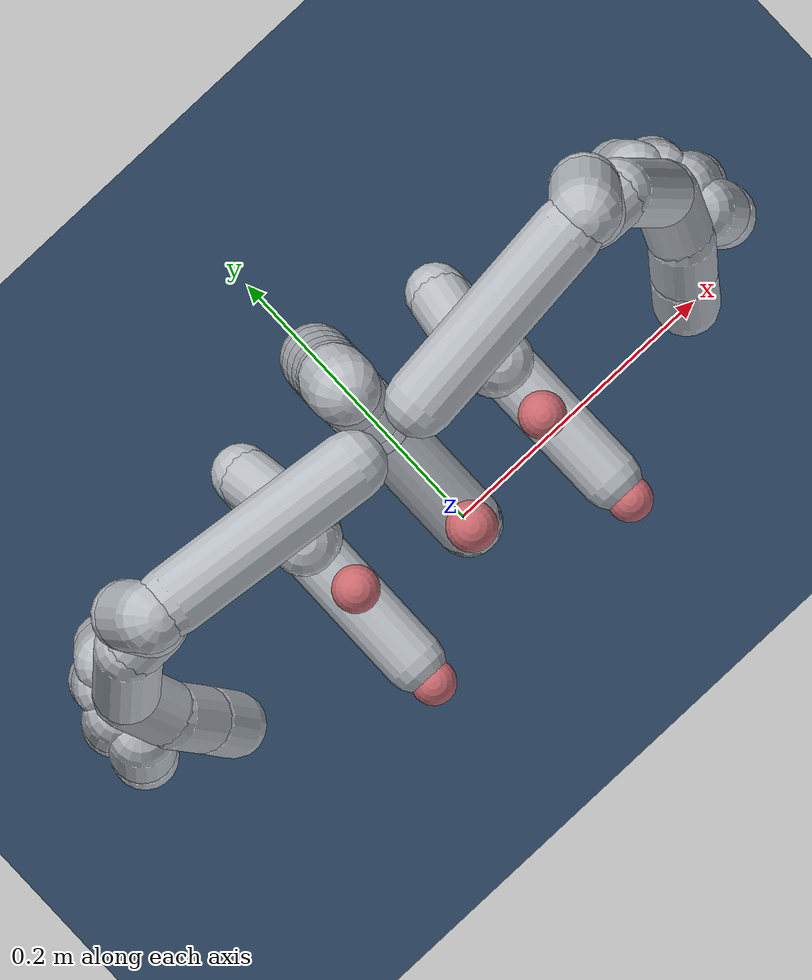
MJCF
<?xml version="1.0" ?>
<mujoco>
  <compiler angle="radian" autolimits="true"/>
  <option gravity="0 0 -9.81" timestep="0.01"/>
  <visual>
    <headlight diffuse="0.6 0.6 0.6" ambient="0.3 0.3 0.3" specular="0 0 0"/>
  </visual>
  <asset>
    <texture name="grid" type="2d" builtin="checker" width="512" height="512" rgb1="0.1 0.2 0.3" rgb2="0.2 0.3 0.4"/>
    <material name="grid" texture="grid" texrepeat="1 1" texuniform="true" reflectance="0.2"/>
  </asset>
  <worldbody>
    <geom name="floor" type="plane" size="10 10 0.1" material="grid" pos="0 0 0"/>
    <light name="spotlight" directional="true" diffuse="0.8 0.8 0.8" specular="0.2 0.2 0.2" pos="0 -2 4" dir="0 1 -1"/>
    <body name="Myo_Skeleton_body">
      <geom type="capsule" size="0.02" fromto="0 0 0 0.0 -0.0 0.855" rgba="0.9 0.9 0.9 0.8"/>
      <joint name="Myo_Skeleton" type="free"/>
      <body name="myoskeleton_root_body" pos="0.0 -0.0 0.95">
        <geom type="sphere" size="0.02" rgba="0.8 0.8 0.8 0.8"/>
        <joint name="myoskeleton_root" type="ball"/>
        <body name="pelvis_body" pos="0.0 -0.0 0.001">
          <geom type="capsule" size="0.02" fromto="0 0 0 0.0 0.07919999999999999 0.0486" rgba="0.9 0.9 0.9 0.8"/>
          <joint name="pelvis" type="ball"/>
          <body name="lumbar_spine_5_body" pos="0.0 0.088 0.054">
            <geom type="capsule" size="0.02" fromto="0 0 0 0.0 -0.0081 0.02889" rgba="0.9 0.9 0.9 0.8"/>
            <joint name="lumbar_spine_5" type="ball"/>
            <body name="lumbar_spine_4_body" pos="0.0 -0.009 0.0321">
              <geom type="capsule" size="0.02" fromto="0 0 0 0.0 -0.00054 0.02988" rgba="0.9 0.9 0.9 0.8"/>
              <joint name="lumbar_spine_4" type="ball"/>
              <body name="lumbar_spine_3_body" pos="0.0 -0.0006 0.0332">
                <geom type="capsule" size="0.02" fromto="0 0 0 0.0 0.006030000000000001 0.03159" rgba="0.9 0.9 0.9 0.8"/>
                <joint name="lumbar_spine_3" type="ball"/>
                <body name="lumbar_spine_2_body" pos="0.0 0.0067 0.0351">
                  <geom type="capsule" size="0.02" fromto="0 0 0 0.0 0.01026 0.02592" rgba="0.9 0.9 0.9 0.8"/>
                  <joint name="lumbar_spine_2" type="ball"/>
                  <body name="lumbar_spine_1_body" pos="0.0 0.0114 0.0288">
                    <geom type="capsule" size="0.02" fromto="0 0 0 0.0 0.027 0.029789999999999997" rgba="0.9 0.9 0.9 0.8"/>
                    <joint name="lumbar_spine_1" type="ball"/>
                    <body name="thoracic_spine_body" pos="0.0 0.03 0.0331">
                      <geom type="capsule" size="0.02" fromto="0 0 0 0.0 -0.004644 0.2583" rgba="0.9 0.9 0.9 0.8"/>
                      <joint name="thoracic_spine" type="ball"/>
                      <body name="cervical_spine_7_body" pos="0.0 -0.00516 0.287">
                        <geom type="capsule" size="0.02" fromto="0 0 0 0.0 -0.0034533000000000003 0.014805" rgba="0.9 0.9 0.9 0.8"/>
                        <joint name="cervical_spine_7" type="ball"/>
                        <body name="cervical_spine_6_body" pos="0.0 -0.003837 0.01645">
                          <geom type="capsule" size="0.02" fromto="0 0 0 0.0 -0.0037619999999999997 0.01611" rgba="0.9 0.9 0.9 0.8"/>
                          <joint name="cervical_spine_6" type="ball"/>
                          <body name="cervical_spine_5_body" pos="0.0 -0.00418 0.0179">
                            <geom type="capsule" size="0.02" fromto="0 0 0 0.0 -0.003069 0.017253" rgba="0.9 0.9 0.9 0.8"/>
                            <joint name="cervical_spine_5" type="ball"/>
                            <body name="cervical_spine_4_body" pos="0.0 -0.00341 0.01917">
                              <geom type="capsule" size="0.02" fromto="0 0 0 0.0 -0.002349 0.01386" rgba="0.9 0.9 0.9 0.8"/>
                              <joint name="cervical_spine_4" type="ball"/>
                              <body name="cervical_spine_3_body" pos="0.0 -0.00261 0.0154">
                                <geom type="capsule" size="0.02" fromto="0 0 0 0.0 0.000162 0.014660999999999999" rgba="0.9 0.9 0.9 0.8"/>
                                <joint name="cervical_spine_3" type="ball"/>
                                <body name="cervical_spine_2_body" pos="0.0 0.00018 0.01629">
                                  <geom type="capsule" size="0.02" fromto="0 0 0 0.0 -0.0 0.015984" rgba="0.9 0.9 0.9 0.8"/>
                                  <joint name="cervical_spine_2" type="ball"/>
                                  <body name="cervical_spine_1_body" pos="0.0 -0.0 0.01776">
                                    <geom type="capsule" size="0.02" fromto="0 0 0 0.0 -0.007011 0.013427999999999999" rgba="0.9 0.9 0.9 0.8"/>
                                    <joint name="cervical_spine_1" type="ball"/>
                                    <body name="skull_body" pos="0.0 -0.00779 0.01492">
                                      <geom type="sphere" size="0.015" rgba="1 0.5 0.5 0.8"/>
                                      <joint name="skull" type="ball"/>
                                    </body>
                                  </body>
                                </body>
                              </body>
                            </body>
                          </body>
                        </body>
                      </body>
                      <body name="clavicle_r_body" pos="0.025465 -0.058335 0.25693">
                        <geom type="capsule" size="0.02" fromto="0 0 0 0.12197700000000002 0.012897 0.018063000000000003" rgba="0.9 0.9 0.9 0.8"/>
                        <joint name="clavicle_r" type="ball"/>
                        <body name="scapula_r_body" pos="0.13553 0.01433 0.02007">
                          <geom type="capsule" size="0.02" fromto="0 0 0 0.0081 0.008595 -0.030600000000000002" rgba="0.9 0.9 0.9 0.8"/>
                          <joint name="scapula_r" type="ball"/>
                          <body name="humerus_r_body" pos="0.009 0.00955 -0.034">
                            <geom type="capsule" size="0.02" fromto="0 0 0 -0.0020700000000000002 -0.01089 -0.25686" rgba="0.9 0.9 0.9 0.8"/>
                            <joint name="humerus_r" type="ball"/>
                            <body name="ulna_r_body" pos="-0.0023 -0.0121 -0.2854">
                              <geom type="capsule" size="0.02" fromto="0 0 0 0.0179991 -0.00036 -0.0103527" rgba="0.9 0.9 0.9 0.8"/>
                              <joint name="ulna_r" type="ball"/>
                              <body name="radius_r_body" pos="0.019999 -0.0004 -0.011503">
                                <geom type="capsule" size="0.02" fromto="0 0 0 0.022500000000000003 -0.0162 -0.2178" rgba="0.9 0.9 0.9 0.8"/>
                                <joint name="radius_r" type="ball"/>
                                <body name="lunate_r_body" pos="0.025 -0.018 -0.242">
                                  <geom type="capsule" size="0.02" fromto="0 0 0 -0.009432900000000001 -0.023836500000000004 -0.0225207" rgba="0.9 0.9 0.9 0.8"/>
                                  <joint name="lunate_r" type="ball"/>
                                  <body name="metacarpal_1_r_body" pos="-0.010481 -0.026485 -0.025023">
                                    <geom type="capsule" size="0.02" fromto="0 0 0 -0.01143 -0.01485 -0.02628" rgba="0.9 0.9 0.9 0.8"/>
                                    <joint name="metacarpal_1_r" type="ball"/>
                                    <body name="proximal_phalanx_1_r_body" pos="-0.0127 -0.0165 -0.0292">
                                      <geom type="capsule" size="0.02" fromto="0 0 0 -0.009089999999999999 -0.0126 -0.02331" rgba="0.9 0.9 0.9 0.8"/>
                                      <joint name="proximal_phalanx_1_r" type="ball"/>
                                      <body name="distal_phalanx_1_r_body" pos="-0.0101 -0.014 -0.0259">
                                        <geom type="sphere" size="0.015" rgba="1 0.5 0.5 0.8"/>
                                        <joint name="distal_phalanx_1_r" type="ball"/>
                                      </body>
                                    </body>
                                  </body>
                                  <body name="proximal_phalanx_2_r_body" pos="0.010979 -0.022178 -0.080917">
                                    <geom type="capsule" size="0.02" fromto="0 0 0 0.0065934 -0.006759 -0.0371457" rgba="0.9 0.9 0.9 0.8"/>
                                    <joint name="proximal_phalanx_2_r" type="ball"/>
                                    <body name="intermediate_phalanx_2_r_body" pos="0.007326 -0.00751 -0.041273">
                                      <geom type="capsule" size="0.02" fromto="0 0 0 0.001098 -0.0029997 -0.0223992" rgba="0.9 0.9 0.9 0.8"/>
                                      <joint name="intermediate_phalanx_2_r" type="ball"/>
                                      <body name="distal_phalanx_2_r_body" pos="0.00122 -0.003333 -0.024888">
                                        <geom type="sphere" size="0.015" rgba="1 0.5 0.5 0.8"/>
                                        <joint name="distal_phalanx_2_r" type="ball"/>
                                      </body>
                                    </body>
                                  </body>
                                  <body name="proximal_phalanx_3_r_body" pos="0.011482 -0.004709 -0.080583">
                                    <geom type="capsule" size="0.02" fromto="0 0 0 0.005607 -0.001485 -0.0397899" rgba="0.9 0.9 0.9 0.8"/>
                                    <joint name="proximal_phalanx_3_r" type="ball"/>
                                    <body name="intermediate_phalanx_3_r_body" pos="0.00623 -0.00165 -0.044211">
                                      <geom type="capsule" size="0.02" fromto="0 0 0 0.0017586000000000001 -0.0012285 -0.0261423" rgba="0.9 0.9 0.9 0.8"/>
                                      <joint name="intermediate_phalanx_3_r" type="ball"/>
                                      <body name="distal_phalanx_3_r_body" pos="0.001954 -0.001365 -0.029047">
                                        <geom type="sphere" size="0.015" rgba="1 0.5 0.5 0.8"/>
                                        <joint name="distal_phalanx_3_r" type="ball"/>
                                      </body>
                                    </body>
                                  </body>
                                  <body name="proximal_phalanx_4_r_body" pos="0.005667 0.009884 -0.079262">
                                    <geom type="capsule" size="0.02" fromto="0 0 0 0.0012105 0.0031752 -0.0362295" rgba="0.9 0.9 0.9 0.8"/>
                                    <joint name="proximal_phalanx_4_r" type="ball"/>
                                    <body name="intermediate_phalanx_4_r_body" pos="0.001345 0.003528 -0.040255">
                                      <geom type="capsule" size="0.02" fromto="0 0 0 0.0005067 0.0020853 -0.0223101" rgba="0.9 0.9 0.9 0.8"/>
                                      <joint name="intermediate_phalanx_4_r" type="ball"/>
                                      <body name="distal_phalanx_4_r_body" pos="0.000563 0.002317 -0.024789">
                                        <geom type="sphere" size="0.015" rgba="1 0.5 0.5 0.8"/>
                                        <joint name="distal_phalanx_4_r" type="ball"/>
                                      </body>
                                    </body>
                                  </body>
                                  <body name="proximal_phalanx_5_r_body" pos="-0.003387 0.019501 -0.071168">
                                    <geom type="capsule" size="0.02" fromto="0 0 0 -0.0025911000000000003 0.0047511 -0.0320067" rgba="0.9 0.9 0.9 0.8"/>
                                    <joint name="proximal_phalanx_5_r" type="ball"/>
                                    <body name="intermediate_phalanx_5_r_body" pos="-0.002879 0.005279 -0.035563">
                                      <geom type="capsule" size="0.02" fromto="0 0 0 -0.0020187000000000004 0.0025839 -0.018609300000000002" rgba="0.9 0.9 0.9 0.8"/>
                                      <joint name="intermediate_phalanx_5_r" type="ball"/>
                                      <body name="distal_phalanx_5_r_body" pos="-0.002243 0.002871 -0.020677">
                                        <geom type="sphere" size="0.015" rgba="1 0.5 0.5 0.8"/>
                                        <joint name="distal_phalanx_5_r" type="ball"/>
                                      </body>
                                    </body>
                                  </body>
                                </body>
                              </body>
                            </body>
                          </body>
                        </body>
                      </body>
                      <body name="clavicle_l_body" pos="-0.025465 -0.058335 0.25693">
                        <geom type="capsule" size="0.02" fromto="0 0 0 -0.12197700000000002 0.012897 0.018063000000000003" rgba="0.9 0.9 0.9 0.8"/>
                        <joint name="clavicle_l" type="ball"/>
                        <body name="scapula_l_body" pos="-0.13553 0.01433 0.02007">
                          <geom type="capsule" size="0.02" fromto="0 0 0 -0.0081 0.008595 -0.030600000000000002" rgba="0.9 0.9 0.9 0.8"/>
                          <joint name="scapula_l" type="ball"/>
                          <body name="humerus_l_body" pos="-0.009 0.00955 -0.034">
                            <geom type="capsule" size="0.02" fromto="0 0 0 0.0020700000000000002 -0.01089 -0.25686" rgba="0.9 0.9 0.9 0.8"/>
                            <joint name="humerus_l" type="ball"/>
                            <body name="ulna_l_body" pos="0.0023 -0.0121 -0.2854">
                              <geom type="capsule" size="0.02" fromto="0 0 0 -0.018000000000000002 -0.00036 -0.01035" rgba="0.9 0.9 0.9 0.8"/>
                              <joint name="ulna_l" type="ball"/>
                              <body name="radius_l_body" pos="-0.02 -0.0004 -0.0115">
                                <geom type="capsule" size="0.02" fromto="0 0 0 -0.022500000000000003 -0.0162 -0.2178" rgba="0.9 0.9 0.9 0.8"/>
                                <joint name="radius_l" type="ball"/>
                                <body name="lunate_l_body" pos="-0.025 -0.018 -0.242">
                                  <geom type="capsule" size="0.02" fromto="0 0 0 0.0092529 -0.023319 -0.0221328" rgba="0.9 0.9 0.9 0.8"/>
                                  <joint name="lunate_l" type="ball"/>
                                  <body name="metacarpal_1_l_body" pos="0.010281 -0.02591 -0.024592">
                                    <geom type="capsule" size="0.02" fromto="0 0 0 0.01143 -0.01485 -0.02628" rgba="0.9 0.9 0.9 0.8"/>
                                    <joint name="metacarpal_1_l" type="ball"/>
                                    <body name="proximal_phalanx_1_l_body" pos="0.0127 -0.0165 -0.0292">
                                      <geom type="capsule" size="0.02" fromto="0 0 0 0.009089999999999999 -0.0126 -0.02331" rgba="0.9 0.9 0.9 0.8"/>
                                      <joint name="proximal_phalanx_1_l" type="ball"/>
                                      <body name="distal_phalanx_1_l_body" pos="0.0101 -0.014 -0.0259">
                                        <geom type="sphere" size="0.015" rgba="1 0.5 0.5 0.8"/>
                                        <joint name="distal_phalanx_1_l" type="ball"/>
                                      </body>
                                    </body>
                                  </body>
                                  <body name="proximal_phalanx_2_l_body" pos="-0.011359 -0.023287 -0.083759">
                                    <geom type="capsule" size="0.02" fromto="0 0 0 -0.0065934 -0.0067653 -0.0371457" rgba="0.9 0.9 0.9 0.8"/>
                                    <joint name="proximal_phalanx_2_l" type="ball"/>
                                    <body name="intermediate_phalanx_2_l_body" pos="-0.007326 -0.007517 -0.041273">
                                      <geom type="capsule" size="0.02" fromto="0 0 0 -0.001098 -0.0029997 -0.0223992" rgba="0.9 0.9 0.9 0.8"/>
                                      <joint name="intermediate_phalanx_2_l" type="ball"/>
                                      <body name="distal_phalanx_2_l_body" pos="-0.00122 -0.003333 -0.024888">
                                        <geom type="sphere" size="0.015" rgba="1 0.5 0.5 0.8"/>
                                        <joint name="distal_phalanx_2_l" type="ball"/>
                                      </body>
                                    </body>
                                  </body>
                                  <body name="proximal_phalanx_3_l_body" pos="-0.012039 -0.004745 -0.083547">
                                    <geom type="capsule" size="0.02" fromto="0 0 0 -0.005607 -0.001485 -0.0397899" rgba="0.9 0.9 0.9 0.8"/>
                                    <joint name="proximal_phalanx_3_l" type="ball"/>
                                    <body name="intermediate_phalanx_3_l_body" pos="-0.00623 -0.00165 -0.044211">
                                      <geom type="capsule" size="0.02" fromto="0 0 0 -0.0017586000000000001 -0.0012285 -0.0261423" rgba="0.9 0.9 0.9 0.8"/>
                                      <joint name="intermediate_phalanx_3_l" type="ball"/>
                                      <body name="distal_phalanx_3_l_body" pos="-0.001954 -0.001365 -0.029047">
                                        <geom type="sphere" size="0.015" rgba="1 0.5 0.5 0.8"/>
                                        <joint name="distal_phalanx_3_l" type="ball"/>
                                      </body>
                                    </body>
                                  </body>
                                  <body name="proximal_phalanx_4_l_body" pos="-0.0059324 0.010794 -0.082323">
                                    <geom type="capsule" size="0.02" fromto="0 0 0 -0.0012105 0.0031752 -0.0362295" rgba="0.9 0.9 0.9 0.8"/>
                                    <joint name="proximal_phalanx_4_l" type="ball"/>
                                    <body name="intermediate_phalanx_4_l_body" pos="-0.001345 0.003528 -0.040255">
                                      <geom type="capsule" size="0.02" fromto="0 0 0 -0.0005067 0.0020853 -0.0223101" rgba="0.9 0.9 0.9 0.8"/>
                                      <joint name="intermediate_phalanx_4_l" type="ball"/>
                                      <body name="distal_phalanx_4_l_body" pos="-0.000563 0.002317 -0.024789">
                                        <geom type="sphere" size="0.015" rgba="1 0.5 0.5 0.8"/>
                                        <joint name="distal_phalanx_4_l" type="ball"/>
                                      </body>
                                    </body>
                                  </body>
                                  <body name="proximal_phalanx_5_l_body" pos="0.0037057 0.021155 -0.073788">
                                    <geom type="capsule" size="0.02" fromto="0 0 0 0.0025911000000000003 0.0047511 -0.0320067" rgba="0.9 0.9 0.9 0.8"/>
                                    <joint name="proximal_phalanx_5_l" type="ball"/>
                                    <body name="intermediate_phalanx_5_l_body" pos="0.002879 0.005279 -0.035563">
                                      <geom type="capsule" size="0.02" fromto="0 0 0 0.0020187000000000004 0.0025839 -0.018609300000000002" rgba="0.9 0.9 0.9 0.8"/>
                                      <joint name="intermediate_phalanx_5_l" type="ball"/>
                                      <body name="distal_phalanx_5_l_body" pos="0.002243 0.002871 -0.020677">
                                        <geom type="sphere" size="0.015" rgba="1 0.5 0.5 0.8"/>
                                        <joint name="distal_phalanx_5_l" type="ball"/>
                                      </body>
                                    </body>
                                  </body>
                                </body>
                              </body>
                            </body>
                          </body>
                        </body>
                      </body>
                    </body>
                  </body>
                </body>
              </body>
            </body>
          </body>
          <body name="abdomen_body" pos="0.0 -0.002 0.144">
            <geom type="sphere" size="0.015" rgba="1 0.5 0.5 0.8"/>
            <joint name="abdomen" type="ball"/>
          </body>
          <body name="femur_r_body" pos="0.07726 0.056276 -0.07849">
            <geom type="capsule" size="0.02" fromto="0 0 0 -0.00113877 4.14e-07 -0.363978" rgba="0.9 0.9 0.9 0.8"/>
            <joint name="femur_r" type="ball"/>
            <body name="tibia_r_body" pos="-0.0012653 4.6e-07 -0.40442">
              <geom type="capsule" size="0.02" fromto="0 0 0 0.0 0.009000000000000001 -0.36000000000000004" rgba="0.9 0.9 0.9 0.8"/>
              <joint name="tibia_r" type="ball"/>
              <body name="talus_r_body" pos="0.0 0.01 -0.4">
                <geom type="capsule" size="0.02" fromto="0 0 0 0.007128 0.043893 -0.037755000000000004" rgba="0.9 0.9 0.9 0.8"/>
                <joint name="talus_r" type="ball"/>
                <body name="calcaneus_r_body" pos="0.00792 0.04877 -0.04195">
                  <geom type="capsule" size="0.02" fromto="0 0 0 0.000972 -0.16091999999999998 -0.0018000000000000002" rgba="0.9 0.9 0.9 0.8"/>
                  <joint name="calcaneus_r" type="ball"/>
                  <body name="toes_r_body" pos="0.00108 -0.1788 -0.002">
                    <geom type="sphere" size="0.015" rgba="1 0.5 0.5 0.8"/>
                    <joint name="toes_r" type="ball"/>
                  </body>
                </body>
              </body>
            </body>
            <body name="patella_r_body" pos="0.0 -0.04193 -0.42586">
              <geom type="sphere" size="0.015" rgba="1 0.5 0.5 0.8"/>
              <joint name="patella_r" type="ball"/>
            </body>
          </body>
          <body name="femur_l_body" pos="-0.07726 0.056276 -0.07849">
            <geom type="capsule" size="0.02" fromto="0 0 0 0.00113877 4.14e-07 -0.363978" rgba="0.9 0.9 0.9 0.8"/>
            <joint name="femur_l" type="ball"/>
            <body name="tibia_l_body" pos="0.0012653 4.6e-07 -0.40442">
              <geom type="capsule" size="0.02" fromto="0 0 0 0.0 0.009000000000000001 -0.36000000000000004" rgba="0.9 0.9 0.9 0.8"/>
              <joint name="tibia_l" type="ball"/>
              <body name="talus_l_body" pos="0.0 0.01 -0.4">
                <geom type="capsule" size="0.02" fromto="0 0 0 -0.007128 0.043893 -0.037755000000000004" rgba="0.9 0.9 0.9 0.8"/>
                <joint name="talus_l" type="ball"/>
                <body name="calcaneus_l_body" pos="-0.00792 0.04877 -0.04195">
                  <geom type="capsule" size="0.02" fromto="0 0 0 -0.000972 -0.16091999999999998 -0.0018000000000000002" rgba="0.9 0.9 0.9 0.8"/>
                  <joint name="calcaneus_l" type="ball"/>
                  <body name="toes_l_body" pos="-0.00108 -0.1788 -0.002">
                    <geom type="sphere" size="0.015" rgba="1 0.5 0.5 0.8"/>
                    <joint name="toes_l" type="ball"/>
                  </body>
                </body>
              </body>
            </body>
            <body name="patella_l_body" pos="0.0 -0.04193 -0.42586">
              <geom type="sphere" size="0.015" rgba="1 0.5 0.5 0.8"/>
              <joint name="patella_l" type="ball"/>
            </body>
          </body>
        </body>
      </body>
    </body>
  </worldbody>
  <actuator>
    <motor name="Myo_Skeleton_motor" joint="Myo_Skeleton" gear="250" ctrllimited="true" ctrlrange="-1 1"/>
    <motor name="abdomen_motor" joint="abdomen" gear="100" ctrllimited="true" ctrlrange="-1 1"/>
    <motor name="calcaneus_l_motor" joint="calcaneus_l" gear="100" ctrllimited="true" ctrlrange="-1 1"/>
    <motor name="calcaneus_r_motor" joint="calcaneus_r" gear="100" ctrllimited="true" ctrlrange="-1 1"/>
    <motor name="cervical_spine_1_motor" joint="cervical_spine_1" gear="100" ctrllimited="true" ctrlrange="-1 1"/>
    <motor name="cervical_spine_2_motor" joint="cervical_spine_2" gear="100" ctrllimited="true" ctrlrange="-1 1"/>
    <motor name="cervical_spine_3_motor" joint="cervical_spine_3" gear="100" ctrllimited="true" ctrlrange="-1 1"/>
    <motor name="cervical_spine_4_motor" joint="cervical_spine_4" gear="100" ctrllimited="true" ctrlrange="-1 1"/>
    <motor name="cervical_spine_5_motor" joint="cervical_spine_5" gear="100" ctrllimited="true" ctrlrange="-1 1"/>
    <motor name="cervical_spine_6_motor" joint="cervical_spine_6" gear="100" ctrllimited="true" ctrlrange="-1 1"/>
    <motor name="cervical_spine_7_motor" joint="cervical_spine_7" gear="100" ctrllimited="true" ctrlrange="-1 1"/>
    <motor name="clavicle_l_motor" joint="clavicle_l" gear="100" ctrllimited="true" ctrlrange="-1 1"/>
    <motor name="clavicle_r_motor" joint="clavicle_r" gear="100" ctrllimited="true" ctrlrange="-1 1"/>
    <motor name="distal_phalanx_1_l_motor" joint="distal_phalanx_1_l" gear="100" ctrllimited="true" ctrlrange="-1 1"/>
    <motor name="distal_phalanx_1_r_motor" joint="distal_phalanx_1_r" gear="100" ctrllimited="true" ctrlrange="-1 1"/>
    <motor name="distal_phalanx_2_l_motor" joint="distal_phalanx_2_l" gear="100" ctrllimited="true" ctrlrange="-1 1"/>
    <motor name="distal_phalanx_2_r_motor" joint="distal_phalanx_2_r" gear="100" ctrllimited="true" ctrlrange="-1 1"/>
    <motor name="distal_phalanx_3_l_motor" joint="distal_phalanx_3_l" gear="100" ctrllimited="true" ctrlrange="-1 1"/>
    <motor name="distal_phalanx_3_r_motor" joint="distal_phalanx_3_r" gear="100" ctrllimited="true" ctrlrange="-1 1"/>
    <motor name="distal_phalanx_4_l_motor" joint="distal_phalanx_4_l" gear="100" ctrllimited="true" ctrlrange="-1 1"/>
    <motor name="distal_phalanx_4_r_motor" joint="distal_phalanx_4_r" gear="100" ctrllimited="true" ctrlrange="-1 1"/>
    <motor name="distal_phalanx_5_l_motor" joint="distal_phalanx_5_l" gear="100" ctrllimited="true" ctrlrange="-1 1"/>
    <motor name="distal_phalanx_5_r_motor" joint="distal_phalanx_5_r" gear="100" ctrllimited="true" ctrlrange="-1 1"/>
    <motor name="femur_l_motor" joint="femur_l" gear="100" ctrllimited="true" ctrlrange="-1 1"/>
    <motor name="femur_r_motor" joint="femur_r" gear="100" ctrllimited="true" ctrlrange="-1 1"/>
    <motor name="humerus_l_motor" joint="humerus_l" gear="100" ctrllimited="true" ctrlrange="-1 1"/>
    <motor name="humerus_r_motor" joint="humerus_r" gear="100" ctrllimited="true" ctrlrange="-1 1"/>
    <motor name="intermediate_phalanx_2_l_motor" joint="intermediate_phalanx_2_l" gear="100" ctrllimited="true" ctrlrange="-1 1"/>
    <motor name="intermediate_phalanx_2_r_motor" joint="intermediate_phalanx_2_r" gear="100" ctrllimited="true" ctrlrange="-1 1"/>
    <motor name="intermediate_phalanx_3_l_motor" joint="intermediate_phalanx_3_l" gear="100" ctrllimited="true" ctrlrange="-1 1"/>
    <motor name="intermediate_phalanx_3_r_motor" joint="intermediate_phalanx_3_r" gear="100" ctrllimited="true" ctrlrange="-1 1"/>
    <motor name="intermediate_phalanx_4_l_motor" joint="intermediate_phalanx_4_l" gear="100" ctrllimited="true" ctrlrange="-1 1"/>
    <motor name="intermediate_phalanx_4_r_motor" joint="intermediate_phalanx_4_r" gear="100" ctrllimited="true" ctrlrange="-1 1"/>
    <motor name="intermediate_phalanx_5_l_motor" joint="intermediate_phalanx_5_l" gear="100" ctrllimited="true" ctrlrange="-1 1"/>
    <motor name="intermediate_phalanx_5_r_motor" joint="intermediate_phalanx_5_r" gear="100" ctrllimited="true" ctrlrange="-1 1"/>
    <motor name="lumbar_spine_1_motor" joint="lumbar_spine_1" gear="100" ctrllimited="true" ctrlrange="-1 1"/>
    <motor name="lumbar_spine_2_motor" joint="lumbar_spine_2" gear="100" ctrllimited="true" ctrlrange="-1 1"/>
    <motor name="lumbar_spine_3_motor" joint="lumbar_spine_3" gear="100" ctrllimited="true" ctrlrange="-1 1"/>
    <motor name="lumbar_spine_4_motor" joint="lumbar_spine_4" gear="100" ctrllimited="true" ctrlrange="-1 1"/>
    <motor name="lumbar_spine_5_motor" joint="lumbar_spine_5" gear="100" ctrllimited="true" ctrlrange="-1 1"/>
    <motor name="lunate_l_motor" joint="lunate_l" gear="100" ctrllimited="true" ctrlrange="-1 1"/>
    <motor name="lunate_r_motor" joint="lunate_r" gear="100" ctrllimited="true" ctrlrange="-1 1"/>
    <motor name="metacarpal_1_l_motor" joint="metacarpal_1_l" gear="100" ctrllimited="true" ctrlrange="-1 1"/>
    <motor name="metacarpal_1_r_motor" joint="metacarpal_1_r" gear="100" ctrllimited="true" ctrlrange="-1 1"/>
    <motor name="myoskeleton_root_motor" joint="myoskeleton_root" gear="100" ctrllimited="true" ctrlrange="-1 1"/>
    <motor name="patella_l_motor" joint="patella_l" gear="100" ctrllimited="true" ctrlrange="-1 1"/>
    <motor name="patella_r_motor" joint="patella_r" gear="100" ctrllimited="true" ctrlrange="-1 1"/>
    <motor name="pelvis_motor" joint="pelvis" gear="100" ctrllimited="true" ctrlrange="-1 1"/>
    <motor name="proximal_phalanx_1_l_motor" joint="proximal_phalanx_1_l" gear="100" ctrllimited="true" ctrlrange="-1 1"/>
    <motor name="proximal_phalanx_1_r_motor" joint="proximal_phalanx_1_r" gear="100" ctrllimited="true" ctrlrange="-1 1"/>
    <motor name="proximal_phalanx_2_l_motor" joint="proximal_phalanx_2_l" gear="100" ctrllimited="true" ctrlrange="-1 1"/>
    <motor name="proximal_phalanx_2_r_motor" joint="proximal_phalanx_2_r" gear="100" ctrllimited="true" ctrlrange="-1 1"/>
    <motor name="proximal_phalanx_3_l_motor" joint="proximal_phalanx_3_l" gear="100" ctrllimited="true" ctrlrange="-1 1"/>
    <motor name="proximal_phalanx_3_r_motor" joint="proximal_phalanx_3_r" gear="100" ctrllimited="true" ctrlrange="-1 1"/>
    <motor name="proximal_phalanx_4_l_motor" joint="proximal_phalanx_4_l" gear="100" ctrllimited="true" ctrlrange="-1 1"/>
    <motor name="proximal_phalanx_4_r_motor" joint="proximal_phalanx_4_r" gear="100" ctrllimited="true" ctrlrange="-1 1"/>
    <motor name="proximal_phalanx_5_l_motor" joint="proximal_phalanx_5_l" gear="100" ctrllimited="true" ctrlrange="-1 1"/>
    <motor name="proximal_phalanx_5_r_motor" joint="proximal_phalanx_5_r" gear="100" ctrllimited="true" ctrlrange="-1 1"/>
    <motor name="radius_l_motor" joint="radius_l" gear="100" ctrllimited="true" ctrlrange="-1 1"/>
    <motor name="radius_r_motor" joint="radius_r" gear="100" ctrllimited="true" ctrlrange="-1 1"/>
    <motor name="scapula_l_motor" joint="scapula_l" gear="100" ctrllimited="true" ctrlrange="-1 1"/>
    <motor name="scapula_r_motor" joint="scapula_r" gear="100" ctrllimited="true" ctrlrange="-1 1"/>
    <motor name="skull_motor" joint="skull" gear="100" ctrllimited="true" ctrlrange="-1 1"/>
    <motor name="talus_l_motor" joint="talus_l" gear="100" ctrllimited="true" ctrlrange="-1 1"/>
    <motor name="talus_r_motor" joint="talus_r" gear="100" ctrllimited="true" ctrlrange="-1 1"/>
    <motor name="thoracic_spine_motor" joint="thoracic_spine" gear="100" ctrllimited="true" ctrlrange="-1 1"/>
    <motor name="tibia_l_motor" joint="tibia_l" gear="100" ctrllimited="true" ctrlrange="-1 1"/>
    <motor name="tibia_r_motor" joint="tibia_r" gear="100" ctrllimited="true" ctrlrange="-1 1"/>
    <motor name="toes_l_motor" joint="toes_l" gear="100" ctrllimited="true" ctrlrange="-1 1"/>
    <motor name="toes_r_motor" joint="toes_r" gear="100" ctrllimited="true" ctrlrange="-1 1"/>
    <motor name="ulna_l_motor" joint="ulna_l" gear="100" ctrllimited="true" ctrlrange="-1 1"/>
    <motor name="ulna_r_motor" joint="ulna_r" gear="100" ctrllimited="true" ctrlrange="-1 1"/>
  </actuator>
</mujoco>
